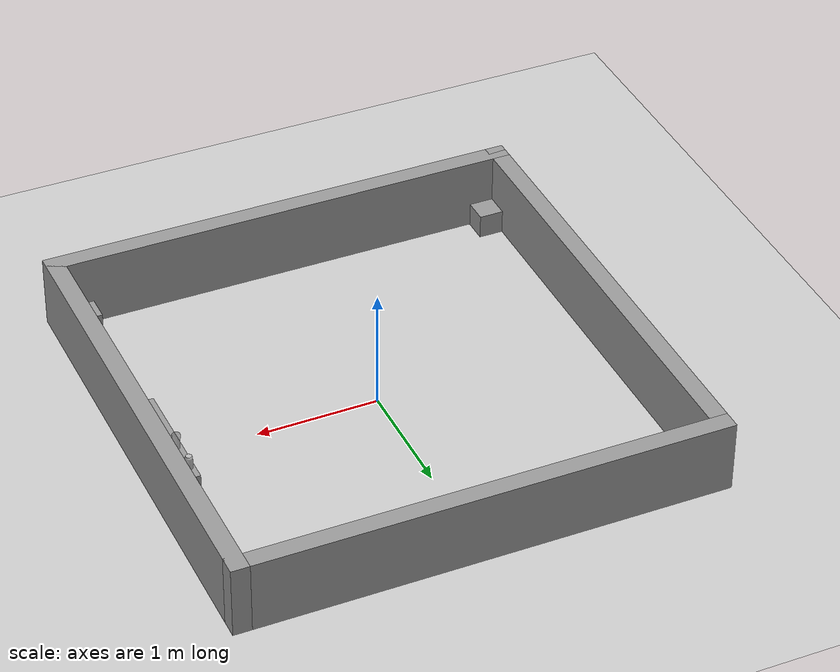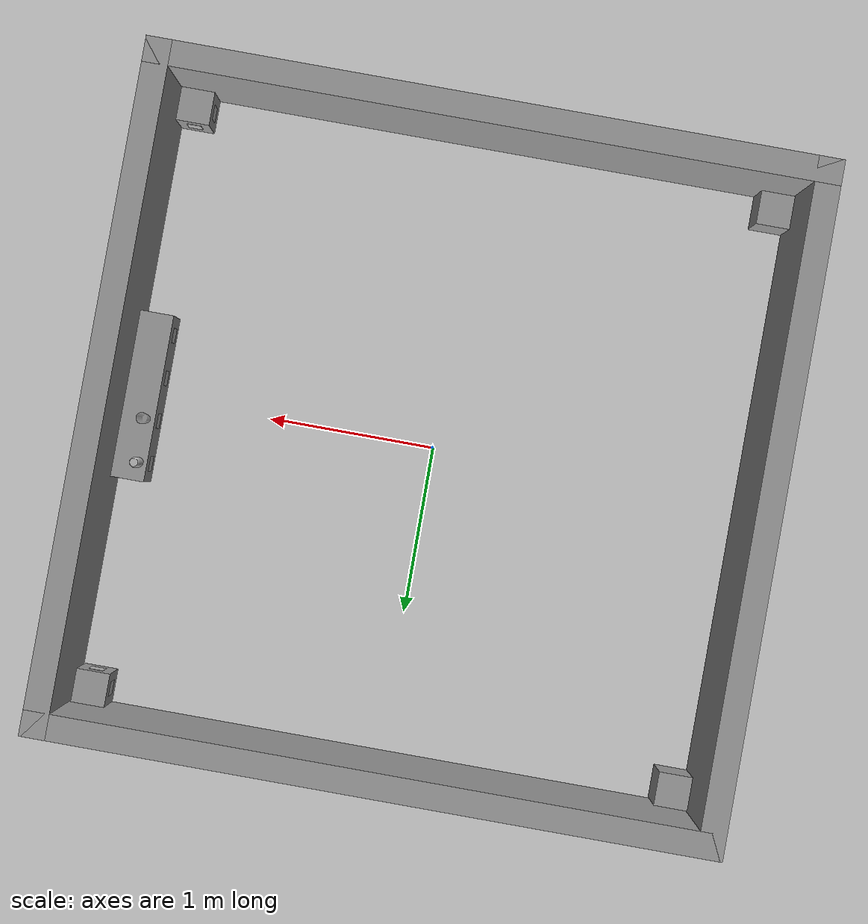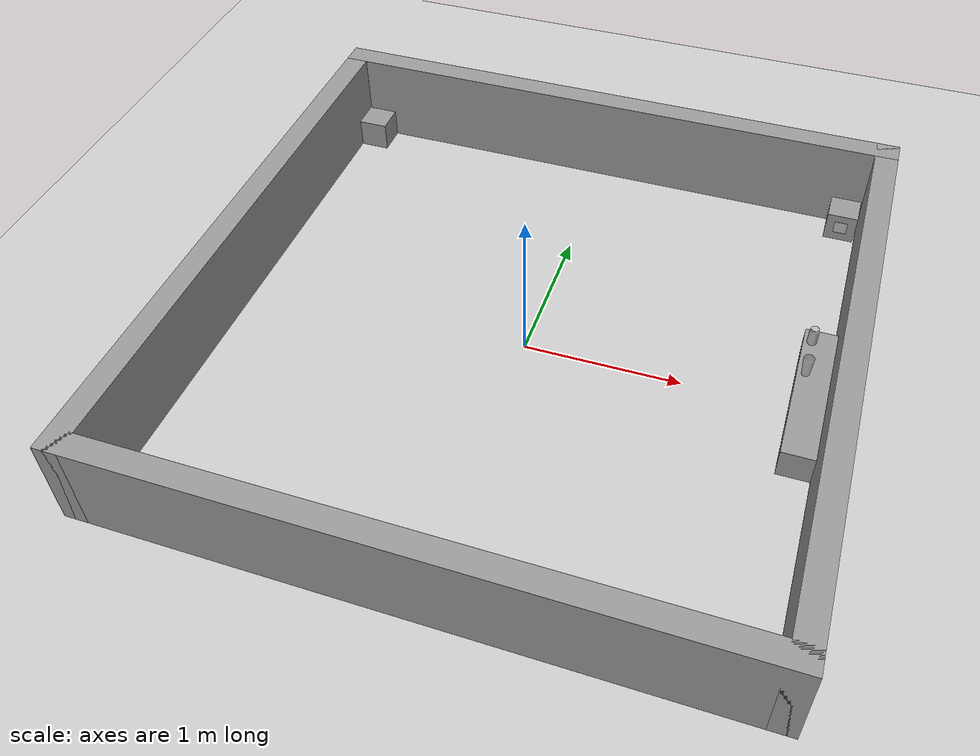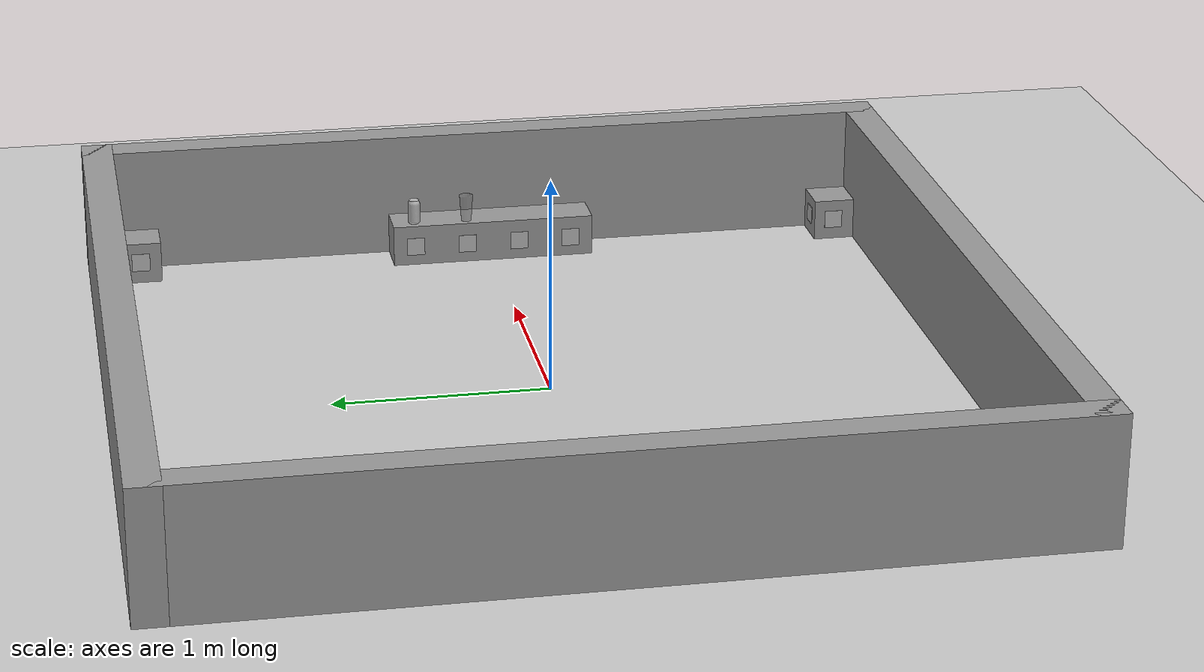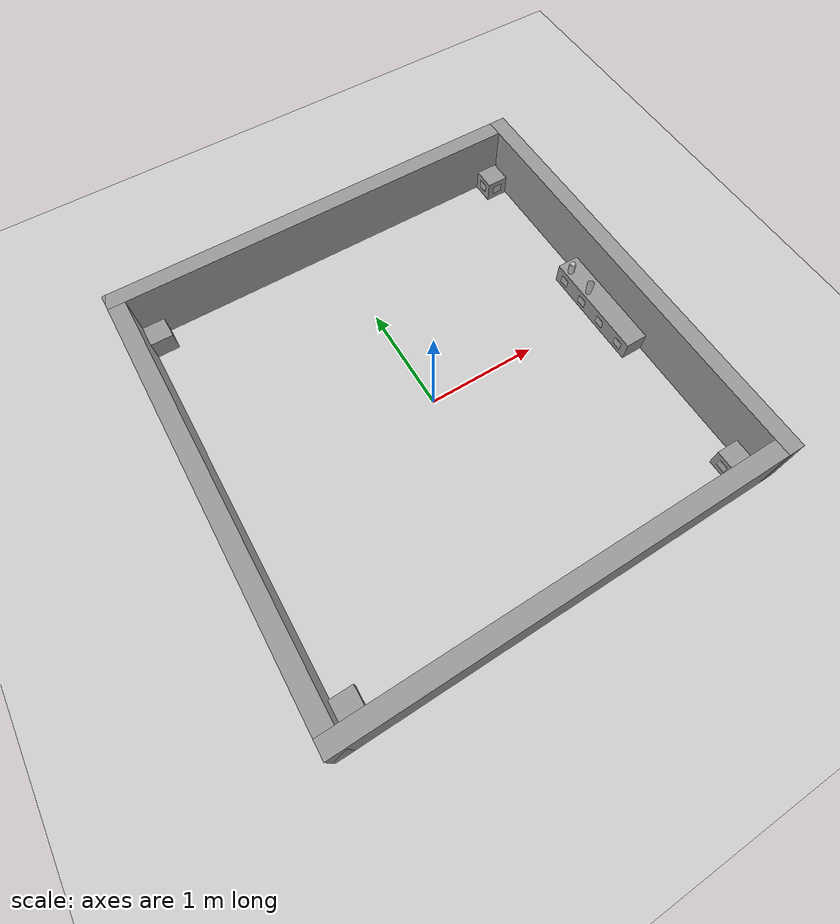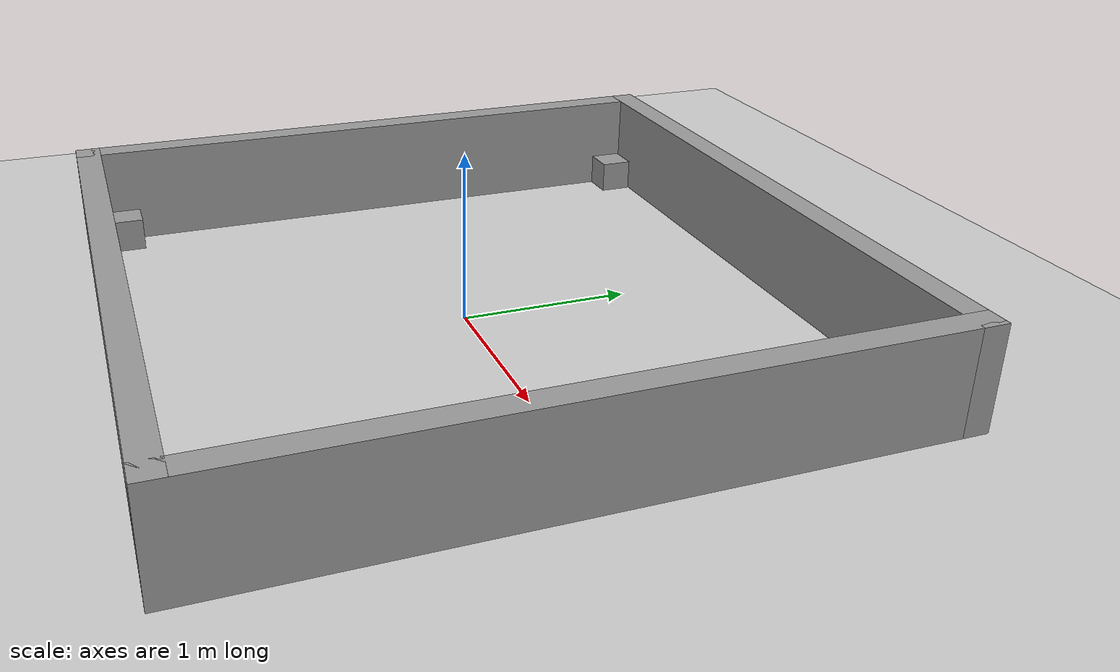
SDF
<sdf version="1.6">
 <world name="default">
  <light name="sun" type="directional">
   <pose>0 0 10 0 -0 0</pose>
   <diffuse>0.8 0.8 0.8 1</diffuse>
   <specular>0.1 0.1 0.1 1</specular>
   <attenuation>
    <range>1000</range>
    <constant>0.9</constant>
    <linear>0.01</linear>
    <quadratic>0.001</quadratic>
   </attenuation>
   <direction>-0.5 0.5 -1</direction>
  </light>
  <model name="ground_plane">
   <static>1</static>
   <link name="ground_plane::link">
    <collision name="collision">
     <geometry><plane><normal>0 0 1</normal><size>100 100</size></plane></geometry>
     <surface><friction><ode><mu>100</mu><mu2>50</mu2></ode></friction></surface>
    </collision>
    <visual name="visual">
     <cast_shadows>0</cast_shadows>
     <geometry><plane><normal>0 0 1</normal><size>100 100</size></plane></geometry>
     <material>
      <script><uri>file://media/materials/scripts/gazebo.material</uri><name>Gazebo/Grey</name></script>
     </material>
    </visual>
   </link>
  </model>
  <gravity>0 0 -9.8</gravity>
  <magnetic_field>6e-06 2.3e-05 -4.2e-05</magnetic_field>
  <atmosphere type="adiabatic"/>
  <physics name="default_physics" default="0" type="ode">
   <max_step_size>0.001</max_step_size>
   <real_time_factor>1</real_time_factor>
   <real_time_update_rate>1000</real_time_update_rate>
  </physics>
  <scene><ambient>0.4 0.4 0.4 1</ambient><background>0.7 0.7 0.7 1</background><shadows>1</shadows></scene>
  <spherical_coordinates>
   <surface_model>EARTH_WGS84</surface_model>
   <latitude_deg>0</latitude_deg>
   <longitude_deg>0</longitude_deg>
   <elevation>0</elevation>
   <heading_deg>0</heading_deg>
  </spherical_coordinates>
  <model name="competition_room">
   <link name="Wall_1">
    <collision name="Wall_1_Collision">
     <geometry><box><size>4 0.15 0.6</size></box></geometry>
     <pose>0 0 0.3 0 -0 0</pose>
    </collision>
    <visual name="Wall_1_Visual">
     <pose>0 0 0.3 0 -0 0</pose>
     <geometry><box><size>4 0.15 0.6</size></box></geometry>
     <material>
      <script><uri>file://media/materials/scripts/gazebo.material</uri><name>Gazebo/Grey</name></script>
      <ambient>0 0 0 1</ambient>
     </material>
    </visual>
    <pose>1.925 0 0 0 -0 1.5708</pose>
   </link>
   <link name="Wall_2">
    <collision name="Wall_2_Collision">
     <geometry><box><size>4 0.15 0.6</size></box></geometry>
     <pose>0 0 0.3 0 -0 0</pose>
    </collision>
    <visual name="Wall_2_Visual">
     <pose>0 0 0.3 0 -0 0</pose>
     <geometry><box><size>4 0.15 0.6</size></box></geometry>
     <material>
      <script><uri>file://media/materials/scripts/gazebo.material</uri><name>Gazebo/Grey</name></script>
      <ambient>0 0 0 1</ambient>
     </material>
    </visual>
    <pose>0 1.925 0 0 -0 3.14159</pose>
   </link>
   <link name="Wall_3">
    <collision name="Wall_3_Collision">
     <geometry><box><size>4 0.15 0.6</size></box></geometry>
     <pose>0 0 0.3 0 -0 0</pose>
    </collision>
    <visual name="Wall_3_Visual">
     <pose>0 0 0.3 0 -0 0</pose>
     <geometry><box><size>4 0.15 0.6</size></box></geometry>
     <material>
      <script><uri>file://media/materials/scripts/gazebo.material</uri><name>Gazebo/Grey</name></script>
      <ambient>0 0 0 1</ambient>
     </material>
    </visual>
    <pose>-1.925 0 0 0 0 -1.5708</pose>
   </link>
   <link name="Wall_4">
    <collision name="Wall_4_Collision">
     <geometry><box><size>4 0.15 0.6</size></box></geometry>
     <pose>0 0 0.3 0 -0 0</pose>
    </collision>
    <visual name="Wall_4_Visual">
     <pose>0 0 0.3 0 -0 0</pose>
     <geometry><box><size>4 0.15 0.6</size></box></geometry>
     <material>
      <script><uri>file://media/materials/scripts/gazebo.material</uri><name>Gazebo/Grey</name></script>
      <ambient>0 0 0 1</ambient>
     </material>
    </visual>
    <pose>0 -1.925 0 0 -0 0</pose>
   </link>
   <static>1</static>
  </model>
  <model name="stand_0">
   <link name="link_2">
    <inertial>
     <mass>1</mass>
     <inertia>
      <ixx>0.166667</ixx>
      <ixy>0</ixy>
      <ixz>0</ixz>
      <iyy>0.166667</iyy>
      <iyz>0</iyz>
      <izz>0.166667</izz>
     </inertia>
    </inertial>
    <kinematic>1</kinematic>
    <visual name="visual">
     <geometry><box><size>0.2 1 0.2</size></box></geometry>
     <material>
      <lighting>1</lighting>
      <script><uri>file://media/materials/scripts/gazebo.material</uri><name>Gazebo/Grey</name></script>
      <ambient>0.3 0.3 0.3 1</ambient>
      <diffuse>0.7 0.7 0.7 1</diffuse>
      <specular>0.01 0.01 0.01 1</specular>
      <emissive>0 0 0 1</emissive>
      <shader type="vertex"><normal_map>__default__</normal_map></shader>
     </material>
    </visual>
    <collision name="collision">
     <geometry><box><size>0.2 1 0.2</size></box></geometry>
     <surface>
      <friction>
       <ode><mu>1</mu><mu2>1</mu2><fdir1>0 0 0</fdir1><slip1>0</slip1><slip2>0</slip2></ode>
       <torsional>
        <coefficient>1</coefficient>
        <patch_radius>0</patch_radius>
        <surface_radius>0</surface_radius>
        <use_patch_radius>1</use_patch_radius>
        <ode><slip>0</slip></ode>
       </torsional>
      </friction>
      <bounce><restitution_coefficient>0</restitution_coefficient><threshold>1e+06</threshold></bounce>
      <contact>
       <collide_without_contact>0</collide_without_contact>
       <collide_without_contact_bitmask>1</collide_without_contact_bitmask>
       <collide_bitmask>1</collide_bitmask>
       <ode>
        <soft_cfm>0</soft_cfm>
        <soft_erp>0.2</soft_erp>
        <kp>1e+13</kp>
        <kd>1</kd>
        <max_vel>0.01</max_vel>
        <min_depth>0</min_depth>
       </ode>
       <bullet>
        <split_impulse>1</split_impulse>
        <split_impulse_penetration_threshold>-0.01</split_impulse_penetration_threshold>
        <soft_cfm>0</soft_cfm>
        <soft_erp>0.2</soft_erp>
        <kp>1e+13</kp>
        <kd>1</kd>
       </bullet>
      </contact>
     </surface>
    </collision>
   </link>
   <static>0</static>
   <pose>1.74999 0 0.1 0 0 0</pose>
  </model>
  <model name="Marker0">
   <static>1</static>
   <link name="link">
    <visual name="visual">
     <geometry>
      <mesh><uri>model://marker0/meshes/Marker0.dae</uri><scale>0.176 0.176 0.176</scale></mesh>
     </geometry>
    </visual>
   </link>
   <pose>1.64912 0.39 0.05 0 0 -8e-06</pose>
  </model>
  <model name="Marker1">
   <static>1</static>
   <link name="link">
    <visual name="visual">
     <geometry>
      <mesh><uri>model://marker1/meshes/Marker1.dae</uri><scale>0.176 0.176 0.176</scale></mesh>
     </geometry>
    </visual>
   </link>
   <pose>1.64912 0.13 0.05 0 -0 0</pose>
  </model>
  <model name="Marker2">
   <static>1</static>
   <link name="link">
    <visual name="visual">
     <geometry>
      <mesh><uri>model://marker2/meshes/Marker2.dae</uri><scale>0.176 0.176 0.176</scale></mesh>
     </geometry>
    </visual>
   </link>
   <pose>1.64912 -0.13 0.05 0 -0 0</pose>
  </model>
  <model name="Marker3">
   <static>1</static>
   <link name="link">
    <visual name="visual">
     <geometry>
      <mesh><uri>model://marker3/meshes/Marker3.dae</uri><scale>0.176 0.176 0.176</scale></mesh>
     </geometry>
    </visual>
   </link>
   <pose>1.64912 -0.39 0.05 0 -0 0</pose>
  </model>
  <model name="unit_box_0">
   <link name="link">
    <inertial>
     <mass>1</mass>
     <inertia>
      <ixx>0.166667</ixx>
      <ixy>0</ixy>
      <ixz>0</ixz>
      <iyy>0.166667</iyy>
      <iyz>0</iyz>
      <izz>0.166667</izz>
     </inertia>
    </inertial>
    <kinematic>1</kinematic>
    <visual name="visual">
     <geometry><box><size>0.2 0.2 0.2</size></box></geometry>
     <material>
      <script><name>Gazebo/Grey</name><uri>file://media/materials/scripts/gazebo.material</uri></script>
      <ambient>0.3 0.3 0.3 1</ambient>
      <diffuse>0.7 0.7 0.7 1</diffuse>
      <specular>0.01 0.01 0.01 1</specular>
      <emissive>0 0 0 1</emissive>
      <shader type="vertex"><normal_map>__default__</normal_map></shader>
     </material>
    </visual>
    <collision name="collision">
     <geometry><box><size>0.2 0.2 0.2</size></box></geometry>
     <surface>
      <friction>
       <ode><mu>1</mu><mu2>1</mu2><fdir1>0 0 0</fdir1><slip1>0</slip1><slip2>0</slip2></ode>
       <torsional>
        <coefficient>1</coefficient>
        <patch_radius>0</patch_radius>
        <surface_radius>0</surface_radius>
        <use_patch_radius>1</use_patch_radius>
        <ode><slip>0</slip></ode>
       </torsional>
      </friction>
      <bounce><restitution_coefficient>0</restitution_coefficient><threshold>1e+06</threshold></bounce>
      <contact>
       <collide_without_contact>0</collide_without_contact>
       <collide_without_contact_bitmask>1</collide_without_contact_bitmask>
       <collide_bitmask>1</collide_bitmask>
       <ode>
        <soft_cfm>0</soft_cfm>
        <soft_erp>0.2</soft_erp>
        <kp>1e+13</kp>
        <kd>1</kd>
        <max_vel>0.01</max_vel>
        <min_depth>0</min_depth>
       </ode>
       <bullet>
        <split_impulse>1</split_impulse>
        <split_impulse_penetration_threshold>-0.01</split_impulse_penetration_threshold>
        <soft_cfm>0</soft_cfm>
        <soft_erp>0.2</soft_erp>
        <kp>1e+13</kp>
        <kd>1</kd>
       </bullet>
      </contact>
     </surface>
    </collision>
   </link>
   <static>0</static>
   <pose>1.74148 1.74998 0.1 0 0 0</pose>
  </model>
  <model name="Marker0_1">
   <static>1</static>
   <link name="link">
    <visual name="visual">
     <geometry>
      <mesh><uri>model://marker0/meshes/Marker0.dae</uri><scale>0.176 0.176 0.176</scale></mesh>
     </geometry>
    </visual>
   </link>
   <pose>1.64059 1.75 0.06 0 -0 0</pose>
  </model>
  <model name="Marker0_2">
   <static>1</static>
   <link name="link">
    <visual name="visual">
     <geometry>
      <mesh><uri>model://marker0/meshes/Marker0.dae</uri><scale>0.176 0.176 0.176</scale></mesh>
     </geometry>
    </visual>
   </link>
   <pose>1.74054 1.64912 0.06 0 -0 1.57079</pose>
  </model>
  <model name="unit_box_1">
   <link name="unit_box_1::unit_box_1::link">
    <inertial>
     <mass>1</mass>
     <inertia>
      <ixx>0.166667</ixx>
      <ixy>0</ixy>
      <ixz>0</ixz>
      <iyy>0.166667</iyy>
      <iyz>0</iyz>
      <izz>0.166667</izz>
     </inertia>
    </inertial>
    <kinematic>1</kinematic>
    <visual name="visual">
     <geometry><box><size>0.2 0.2 0.2</size></box></geometry>
     <material>
      <script><name>Gazebo/Grey</name><uri>file://media/materials/scripts/gazebo.material</uri></script>
      <ambient>0.3 0.3 0.3 1</ambient>
      <diffuse>0.7 0.7 0.7 1</diffuse>
      <specular>0.01 0.01 0.01 1</specular>
      <emissive>0 0 0 1</emissive>
      <shader type="vertex"><normal_map>__default__</normal_map></shader>
     </material>
    </visual>
    <collision name="collision">
     <geometry><box><size>0.2 0.2 0.2</size></box></geometry>
     <surface>
      <friction>
       <ode><mu>1</mu><mu2>1</mu2><fdir1>0 0 0</fdir1><slip1>0</slip1><slip2>0</slip2></ode>
       <torsional>
        <coefficient>1</coefficient>
        <patch_radius>0</patch_radius>
        <surface_radius>0</surface_radius>
        <use_patch_radius>1</use_patch_radius>
        <ode><slip>0</slip></ode>
       </torsional>
      </friction>
      <bounce><restitution_coefficient>0</restitution_coefficient><threshold>1e+06</threshold></bounce>
      <contact>
       <collide_without_contact>0</collide_without_contact>
       <collide_without_contact_bitmask>1</collide_without_contact_bitmask>
       <collide_bitmask>1</collide_bitmask>
       <ode>
        <soft_cfm>0</soft_cfm>
        <soft_erp>0.2</soft_erp>
        <kp>1e+13</kp>
        <kd>1</kd>
        <max_vel>0.01</max_vel>
        <min_depth>0</min_depth>
       </ode>
       <bullet>
        <split_impulse>1</split_impulse>
        <split_impulse_penetration_threshold>-0.01</split_impulse_penetration_threshold>
        <soft_cfm>0</soft_cfm>
        <soft_erp>0.2</soft_erp>
        <kp>1e+13</kp>
        <kd>1</kd>
       </bullet>
      </contact>
     </surface>
    </collision>
   </link>
   <static>0</static>
   <pose>1.74721 -1.75 0.1 0 -0 0</pose>
  </model>
  <model name="unit_box_2">
   <link name="link">
    <inertial>
     <mass>1</mass>
     <inertia>
      <ixx>0.166667</ixx>
      <ixy>0</ixy>
      <ixz>0</ixz>
      <iyy>0.166667</iyy>
      <iyz>0</iyz>
      <izz>0.166667</izz>
     </inertia>
    </inertial>
    <kinematic>1</kinematic>
    <visual name="visual">
     <geometry><box><size>0.2 0.2 0.2</size></box></geometry>
     <material>
      <script><name>Gazebo/Grey</name><uri>file://media/materials/scripts/gazebo.material</uri></script>
      <ambient>0.3 0.3 0.3 1</ambient>
      <diffuse>0.7 0.7 0.7 1</diffuse>
      <specular>0.01 0.01 0.01 1</specular>
      <emissive>0 0 0 1</emissive>
      <shader type="vertex"><normal_map>__default__</normal_map></shader>
     </material>
    </visual>
    <collision name="collision">
     <geometry><box><size>0.2 0.2 0.2</size></box></geometry>
     <surface>
      <friction>
       <ode><mu>1</mu><mu2>1</mu2><fdir1>0 0 0</fdir1><slip1>0</slip1><slip2>0</slip2></ode>
       <torsional>
        <coefficient>1</coefficient>
        <patch_radius>0</patch_radius>
        <surface_radius>0</surface_radius>
        <use_patch_radius>1</use_patch_radius>
        <ode><slip>0</slip></ode>
       </torsional>
      </friction>
      <bounce><restitution_coefficient>0</restitution_coefficient><threshold>1e+06</threshold></bounce>
      <contact>
       <collide_without_contact>0</collide_without_contact>
       <collide_without_contact_bitmask>1</collide_without_contact_bitmask>
       <collide_bitmask>1</collide_bitmask>
       <ode>
        <soft_cfm>0</soft_cfm>
        <soft_erp>0.2</soft_erp>
        <kp>1e+13</kp>
        <kd>1</kd>
        <max_vel>0.01</max_vel>
        <min_depth>0</min_depth>
       </ode>
       <bullet>
        <split_impulse>1</split_impulse>
        <split_impulse_penetration_threshold>-0.01</split_impulse_penetration_threshold>
        <soft_cfm>0</soft_cfm>
        <soft_erp>0.2</soft_erp>
        <kp>1e+13</kp>
        <kd>1</kd>
       </bullet>
      </contact>
     </surface>
    </collision>
   </link>
   <static>0</static>
   <pose>-1.74999 1.74356 0.099999 3e-06 4e-06 -0</pose>
  </model>
  <model name="unit_box_3">
   <link name="link">
    <inertial>
     <mass>1</mass>
     <inertia>
      <ixx>0.166667</ixx>
      <ixy>0</ixy>
      <ixz>0</ixz>
      <iyy>0.166667</iyy>
      <iyz>0</iyz>
      <izz>0.166667</izz>
     </inertia>
    </inertial>
    <kinematic>1</kinematic>
    <visual name="visual">
     <geometry><box><size>0.2 0.2 0.2</size></box></geometry>
     <material>
      <script><name>Gazebo/Grey</name><uri>file://media/materials/scripts/gazebo.material</uri></script>
      <ambient>0.3 0.3 0.3 1</ambient>
      <diffuse>0.7 0.7 0.7 1</diffuse>
      <specular>0.01 0.01 0.01 1</specular>
      <emissive>0 0 0 1</emissive>
      <shader type="vertex"><normal_map>__default__</normal_map></shader>
     </material>
    </visual>
    <collision name="collision">
     <geometry><box><size>0.2 0.2 0.2</size></box></geometry>
     <surface>
      <friction>
       <ode><mu>1</mu><mu2>1</mu2><fdir1>0 0 0</fdir1><slip1>0</slip1><slip2>0</slip2></ode>
       <torsional>
        <coefficient>1</coefficient>
        <patch_radius>0</patch_radius>
        <surface_radius>0</surface_radius>
        <use_patch_radius>1</use_patch_radius>
        <ode><slip>0</slip></ode>
       </torsional>
      </friction>
      <bounce><restitution_coefficient>0</restitution_coefficient><threshold>1e+06</threshold></bounce>
      <contact>
       <collide_without_contact>0</collide_without_contact>
       <collide_without_contact_bitmask>1</collide_without_contact_bitmask>
       <collide_bitmask>1</collide_bitmask>
       <ode>
        <soft_cfm>0</soft_cfm>
        <soft_erp>0.2</soft_erp>
        <kp>1e+13</kp>
        <kd>1</kd>
        <max_vel>0.01</max_vel>
        <min_depth>0</min_depth>
       </ode>
       <bullet>
        <split_impulse>1</split_impulse>
        <split_impulse_penetration_threshold>-0.01</split_impulse_penetration_threshold>
        <soft_cfm>0</soft_cfm>
        <soft_erp>0.2</soft_erp>
        <kp>1e+13</kp>
        <kd>1</kd>
       </bullet>
      </contact>
     </surface>
    </collision>
   </link>
   <static>0</static>
   <pose>-1.75 -1.74774 0.1 0 -0 0</pose>
  </model>
  <model name="Marker3_1">
   <static>1</static>
   <link name="link">
    <visual name="visual">
     <geometry>
      <mesh><uri>model://marker3/meshes/Marker3.dae</uri><scale>0.176 0.176 0.176</scale></mesh>
     </geometry>
    </visual>
   </link>
   <pose>1.64633 -1.74619 0.058 0 -0 0</pose>
  </model>
  <model name="Marker3_2">
   <static>1</static>
   <link name="link">
    <visual name="visual">
     <geometry>
      <mesh><uri>model://marker3/meshes/Marker3.dae</uri><scale>0.176 0.176 0.176</scale></mesh>
     </geometry>
    </visual>
   </link>
   <pose>1.74879 -1.64912 0.058 0 0 -1.5708</pose>
  </model>
  <model name="coke_can">
   <link name="link">
    <inertial>
     <mass>0.0325</mass>
     <inertia>
      <ixx>0.00009262</ixx>
      <ixy>0</ixy>
      <ixz>0</ixz>
      <iyy>0.00009262</iyy>
      <iyz>0</iyz>
      <izz>0.0000292</izz>
     </inertia>
    </inertial>
    <collision name="collision">
     <pose>0.003937 0.004724 -0.18 0 -0 0</pose>
     <geometry><mesh><uri>model://coke_can/meshes/coke_can.dae</uri><scale>0.9 0.9 1</scale></mesh></geometry>
    </collision>
    <visual name="visual">
     <pose>0.003937 0.004724 -0.18 0 -0 0</pose>
     <geometry><mesh><uri>model://coke_can/meshes/coke_can.dae</uri><scale>0.9 0.9 1</scale></mesh></geometry>
    </visual>
   </link>
   <pose>1.69975 0.389998 0.196937 -0.011609 0.003983 0.00167</pose>
  </model>
  <model name="plastic_cup">
   <link name="link">
    <pose>0 0 0.065 0 -0 0</pose>
    <inertial>
     <mass>0.0599</mass>
     <inertia>
      <ixx>0.000302896</ixx>
      <ixy>0</ixy>
      <ixz>0</ixz>
      <iyy>0.000302896</iyy>
      <iyz>0</iyz>
      <izz>3.28764e-05</izz>
     </inertia>
    </inertial>
    <collision name="collision">
     <geometry>
      <mesh><uri>model://plastic_cup/meshes/plastic_cup.dae</uri><scale>0.9 0.9 1</scale></mesh>
     </geometry>
     <surface>
      <contact>
       <poissons_ratio>0.35</poissons_ratio>
       <elastic_modulus>3.10264e+09</elastic_modulus>
       <ode><kp>100000</kp><kd>100</kd><max_vel>100</max_vel><min_depth>0.001</min_depth></ode>
      </contact>
      <friction>
       <torsional>
        <coefficient>1</coefficient>
        <use_patch_radius>0</use_patch_radius>
        <surface_radius>0.01</surface_radius>
       </torsional>
      </friction>
     </surface>
    </collision>
    <visual name="visual">
     <geometry>
      <mesh><uri>model://plastic_cup/meshes/plastic_cup.dae</uri><scale>0.9 0.9 1</scale></mesh>
     </geometry>
     <material>
      <script><uri>file://media/materials/scripts/gazebo.material</uri><name>Gazebo/GreyTransparent</name></script>
     </material>
    </visual>
   </link>
   <pose>1.69996 0.122 0.207646 5e-05 -1.8e-05 -0.000454</pose>
  </model>
 </world>
</sdf>
